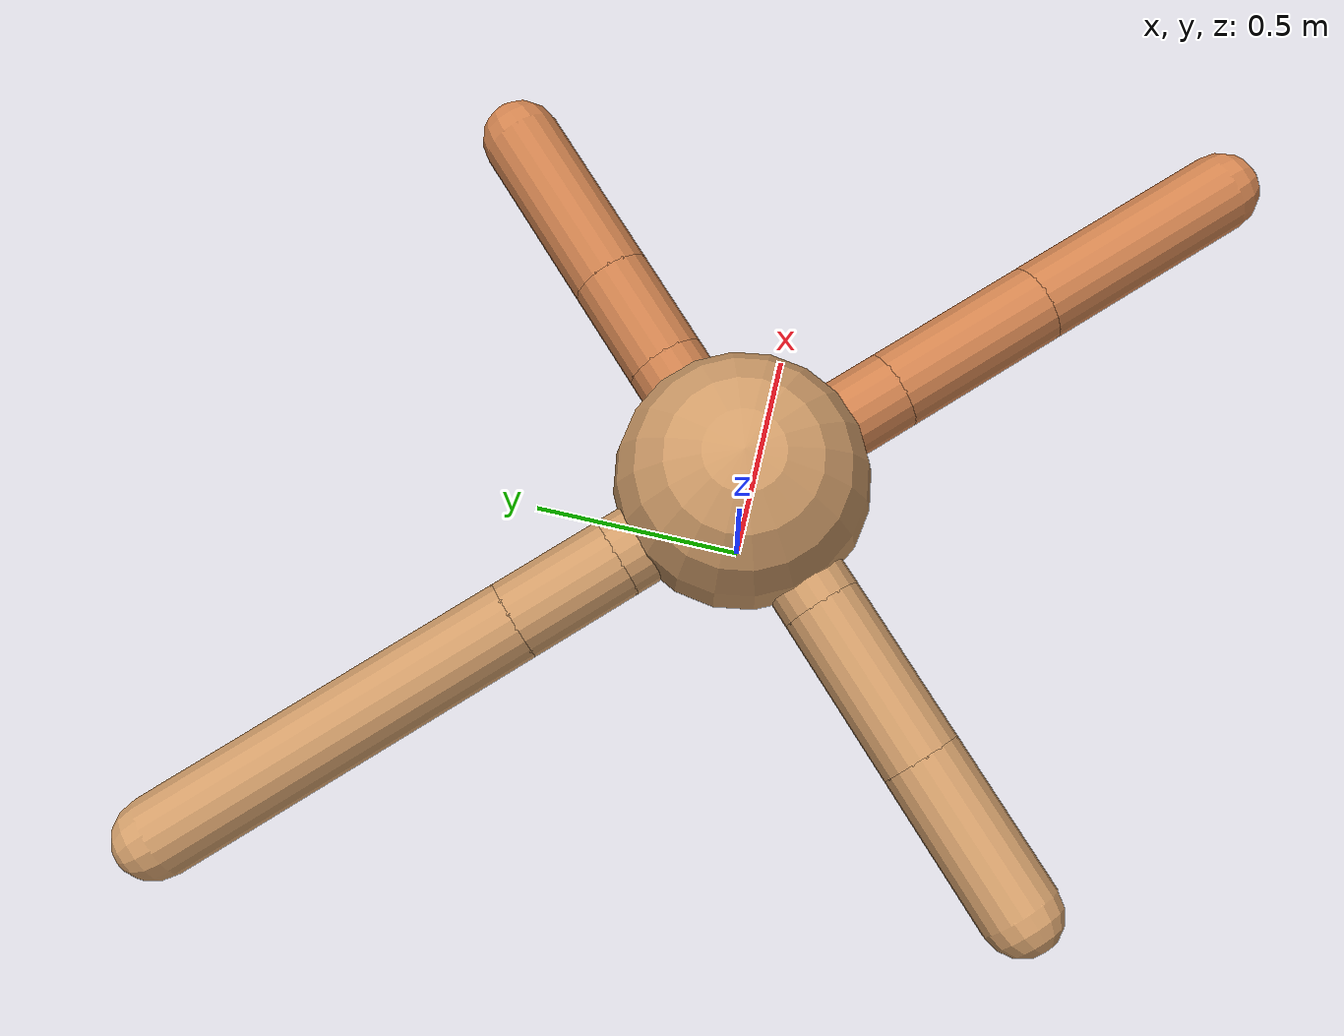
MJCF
<mujoco model="ant">
  <compiler angle="degree" coordinate="local" inertiafromgeom="true" />
  <option integrator="RK4" timestep="0.01" />
  <custom>
    <numeric data="0.0 0.0 0.55 1.0 0.0 0.0 0.0 0.0 1.0 0.0 -1.0 0.0 -1.0 0.0 1.0" name="init_qpos" />
  </custom>
  <default>
    <joint armature="1" damping="1" limited="true" />
    <geom conaffinity="0" condim="3" density="5.0" friction="1.5 0.1 0.1" margin="0.01" rgba="0.8 0.6 0.4 1" />
  </default>
  <worldbody>
    <body name="torso" pos="0 0 0.75">
      <geom name="torso_geom" pos="0 0 0" size="0.25" type="sphere" />

      <body name="front_left_leg" pos="0 0 0">
        <geom fromto="0.0 0.0 0.0 0.2 0.2 0.0" name="aux_1_geom" size="0.08" type="capsule" rgba=".8 .5 .3 1" />
        <body name="aux_1" pos="0.2 0.2 0.0">
          <joint axis="0 0 1" name="hip_1" pos="0.0 0.0 0.0" range="-40 40" type="hinge" />
          <geom fromto="0.0 0.0 0.0 0.1460966557524677 0.1460966557524677 0.0" name="left_leg_geom" size="0.08" type="capsule" rgba=".8 .5 .3 1" />
          <body pos="0.1460966557524677 0.1460966557524677 0.0" name="front_left_foot">
            <joint axis="-1 1 0" name="ankle_1" pos="0.0 0.0 0.0" range="30 100" type="hinge" />
            <geom fromto="0.0 0.0 0.0 0.2506032979662724 0.2506032979662724 0.0" name="left_ankle_geom" size="0.08" type="capsule" rgba=".8 .5 .3 1" />
          </body>
        </body>
      </body>
      <body name="front_right_leg" pos="0 0 0">
        <geom fromto="0.0 0.0 0.0 -0.2 0.2 0.0" name="aux_2_geom" size="0.08" type="capsule" />
        <body name="aux_2" pos="-0.2 0.2 0.0">
          <joint axis="0 0 1" name="hip_2" pos="0.0 0.0 0.0" range="-40 40" type="hinge" />
          <geom fromto="0.0 0.0 0.0 -0.16052371757053974 0.16052371757053974 0.0" name="right_leg_geom" size="0.08" type="capsule" />
          <body pos="-0.16052371757053974 0.16052371757053974 0.0" name="front_right_foot">
            <joint axis="1 1 0" name="ankle_2" pos="0.0 0.0 0.0" range="-100 -30" type="hinge" />
            <geom fromto="0.0 0.0 0.0 -0.532501391744875 0.532501391744875 0.0" name="right_ankle_geom" size="0.08" type="capsule" />
          </body>
        </body>
      </body>
      <body name="left_back_leg" pos="0 0 0">
        <geom fromto="0.0 0.0 0.0 -0.2 -0.2 0.0" name="aux_3_geom" size="0.08" type="capsule" />
        <body name="aux_3" pos="-0.2 -0.2 0.0">
          <joint axis="0 0 1" name="hip_3" pos="0.0 0.0 0.0" range="-40 40" type="hinge" />
          <geom fromto="0.0 0.0 0.0 -0.23851390689545943 -0.23851390689545943 0.0" name="back_leg_geom" size="0.08" type="capsule" />
          <body pos="-0.23851390689545943 -0.23851390689545943 0.0" name="left_back_foot">
            <joint axis="-1 1 0" name="ankle_3" pos="0.0 0.0 0.0" range="-100 -30" type="hinge" />
            <geom fromto="0.0 0.0 0.0 -0.22974531774437362 -0.22974531774437362 0.0" name="third_ankle_geom" size="0.08" type="capsule" />
          </body>
        </body>
      </body>
      <body name="right_back_leg" pos="0 0 0">
        <geom fromto="0.0 0.0 0.0 0.24586915819439747 -0.24586915819439747 0.0" name="aux_4_geom" size="0.08" type="capsule" rgba=".8 .5 .3 1" />
        <body name="aux_4" pos="0.24586915819439747 -0.24586915819439747 0.0">
          <joint axis="0 0 1" name="hip_4" pos="0.0 0.0 0.0" range="-40 40" type="hinge" />
          <geom fromto="0.0 0.0 0.0 0.24002514865656127 -0.24002514865656127 0.0" name="rightback_leg_geom" size="0.08" type="capsule" rgba=".8 .5 .3 1" />
          <body pos="0.24002514865656127 -0.24002514865656127 0.0" name="right_back_foot">
            <joint axis="1 1 0" name="ankle_4" pos="0.0 0.0 0.0" range="30 100" type="hinge" />
            <geom fromto="0.0 0.0 0.0 0.3174522747866369 -0.3174522747866369 0.0" name="fourth_ankle_geom" size="0.08" type="capsule" rgba=".8 .5 .3 1" />
          </body>
        </body>
      </body>
    </body>
  </worldbody>
  <actuator>
    <motor ctrllimited="true" ctrlrange="-1.0 1.0" joint="hip_4" gear="150" />
    <motor ctrllimited="true" ctrlrange="-1.0 1.0" joint="ankle_4" gear="150" />
    <motor ctrllimited="true" ctrlrange="-1.0 1.0" joint="hip_1" gear="150" />
    <motor ctrllimited="true" ctrlrange="-1.0 1.0" joint="ankle_1" gear="150" />
    <motor ctrllimited="true" ctrlrange="-1.0 1.0" joint="hip_2" gear="150" />
    <motor ctrllimited="true" ctrlrange="-1.0 1.0" joint="ankle_2" gear="150" />
    <motor ctrllimited="true" ctrlrange="-1.0 1.0" joint="hip_3" gear="150" />
    <motor ctrllimited="true" ctrlrange="-1.0 1.0" joint="ankle_3" gear="150" />
  </actuator>
</mujoco>
